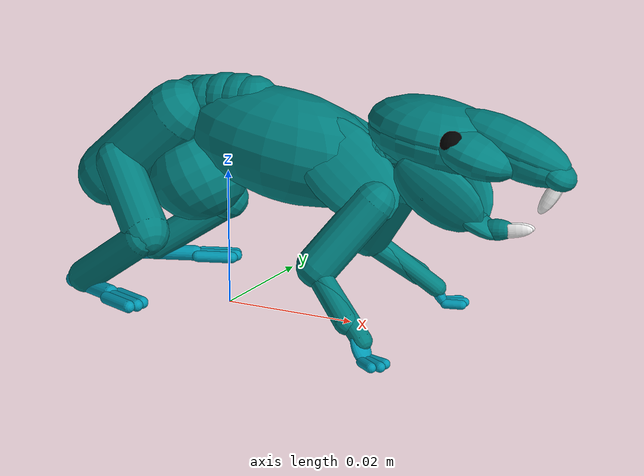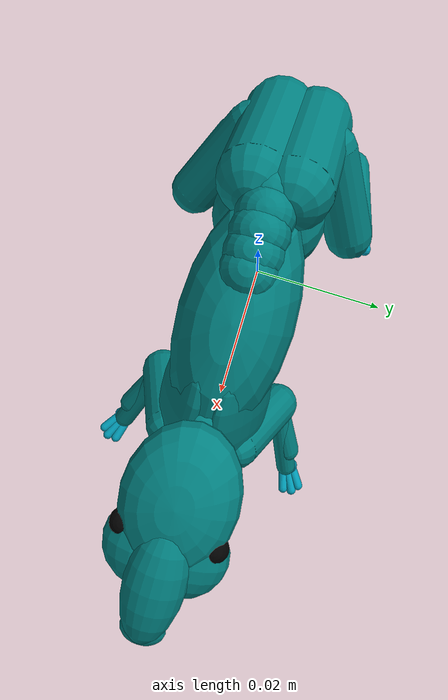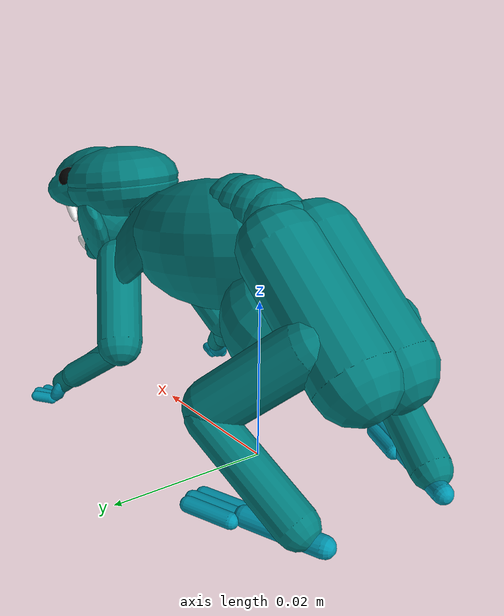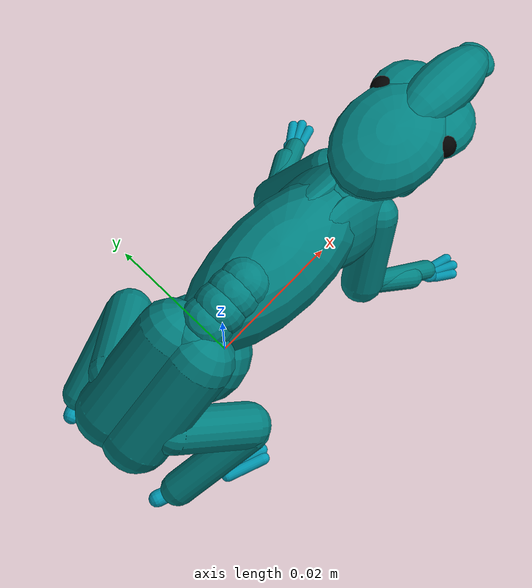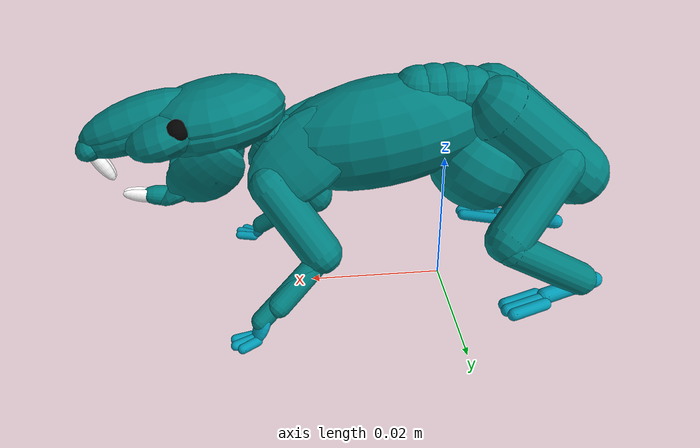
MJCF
<mujoco model="mouse_MA_anatomical03">
  <compiler angle="radian" autolimits="true"/>
  <size njmax="8000" nconmax="4000"/>
  <visual>
    <quality shadowsize="2048"/>
    <global offwidth="1152"/>
    <global offheight="1024"/>
  </visual>
  <default>
    <joint limited="true" solreflimit="0.01 1" solimplimit="0.99 0.9999 0" armature="4.75e-09" damping="0.001"/>
    <geom friction="0.7 0.005 0.0001" solref="0.005 1"/>
    <site group="3" rgba="0 0 1 1"/>
    <general ctrllimited="true" ctrlrange="-1 1" gainprm="0.01"/>
    <default class="bone">
      <geom contype="0" conaffinity="0" group="0" rgba="0.5 0.5 0.5 1" density="1100.0"/>
    </default>
    <default class="collision">
      <geom contype="1" conaffinity="1" condim="1" group="2"/>
      <default class="collision_primitive">
        <geom type="capsule" group="2" rgba="0 0.5 0.5 1" density="500.0"/>
        <default class="collision_primitive_paw">
          <geom condim="3" priority="1" rgba="0 0.6 0.7 1" friction="1.5 0.005 0.0001"/>
        </default>
        <default class="nonself_collision_primitive">
          <geom conaffinity="0"/>
        </default>
      </default>
    </default>
    <default class="lumbar">
      <joint group="3" pos="0.00114 0 -0.00114" armature="7.92e-08" damping="0.03"/>
      <general gainprm="0.15"/>
      <default class="lumbar_extend">
        <joint stiffness="0.01" range="-0.5235987755982988 0.7853981633974483"/>
        <tendon range="-1 1"/>
        <general gainprm="0.4"/>
      </default>
      <default class="lumbar_bend">
        <joint stiffness="0.03" range="-0.5235987755982988 0.5235987755982988"/>
        <tendon range="-1 1"/>
      </default>
      <default class="lumbar_twist">
        <joint stiffness="0.03" range="-0.5235987755982988 0.5235987755982988"/>
        <tendon range="-1 1"/>
      </default>
    </default>
    <default class="cervical">
      <joint group="3" pos="-0.0076 0 -0.019" stiffness="1.0" armature="7.92e-06" damping="1.0"/>
      <default class="cervical_extend">
        <joint range="-0.4072434921320102 0.6108652381980153"/>
        <tendon range="-1 1"/>
        <general gainprm="2.5"/>
      </default>
      <default class="cervical_bend">
        <joint range="-0.6108652381980153 0.6108652381980153"/>
        <tendon range="-1 1"/>
        <general gainprm="2.5"/>
      </default>
      <default class="cervical_twist">
        <joint range="-0.6108652381980153 0.6108652381980153"/>
        <tendon range="-1 1"/>
        <general gainprm="2.5"/>
      </default>
    </default>
    <default class="atlas">
      <joint axis="0 -1 0" stiffness="0.002" range="-0.08726646259971647 0.7853981633974483" damping="0.002"/>
      <general gainprm="0.025"/>
    </default>
    <default class="mandible">
      <joint stiffness="0.002" range="-0.296705972839036 0.2617993877991494" springref="-0.314159265359" damping="0.002"/>
      <general gainprm="0.025"/>
    </default>
    <default class="caudal">
      <joint group="3" stiffness="1e-05" damping="0.002"/>
      <general gainprm="0.005"/>
      <default class="caudal_extend">
        <joint range="-0.08726646259971647 0.08726646259971647"/>
        <tendon range="-0.05 0.05"/>
      </default>
      <default class="caudal_bend">
        <joint range="-0.08726646259971647 0.08726646259971647"/>
        <tendon range="-0.2 0.2"/>
      </default>
    </default>
    <default class="hip">
      <joint armature="7.92e-08" damping="0.02"/>
      <general gainprm="0.2"/>
      <default class="hip_supinate">
        <joint range="-0.6981317007977318 0.5235987755982988"/>
      </default>
      <default class="hip_abduct">
        <joint range="-0.5235987755982988 1.047197551196598"/>
      </default>
      <default class="hip_extend">
        <joint range="-1.570796326794897 1.047197551196598"/>
        <general gainprm="0.3"/>
      </default>
    </default>
    <default class="knee">
      <joint range="-1.221730476396031 1.53588974175501" damping="0.005"/>
      <general gainprm="0.2"/>
    </default>
    <default class="ankle">
      <joint range="-0.1396263401595464 1.396263401595464" damping="0.003"/>
      <general gainprm="0.2"/>
    </default>
    <default class="toe">
      <joint range="0 0.8726646259971648" damping="0.001"/>
      <general gainprm="0.025"/>
    </default>
    <default class="scapula">
      <joint damping="0.005"/>
      <general gainprm="0.25"/>
      <default class="scapula_supinate">
        <joint pos="0 0.0019 0" range="-0.0174532925199433 0.1745329251994329"/>
      </default>
      <default class="scapula_abduct">
        <joint pos="0 0.0019 -0.0038" range="-0.2617993877991494 0.2617993877991494"/>
      </default>
      <default class="scapula_extend">
        <joint pos="0 0 0" range="-0.03490658503988659 0.03490658503988659"/>
        <general gainprm="0.25"/>
      </default>
    </default>
    <default class="shoulder">
      <joint range="-1.308996938995747 0.8726646259971648" damping="0.005"/>
      <general gainprm="0.15"/>
    </default>
    <default class="shoulder_sup">
      <joint range="-0.05235987755982989 1.134464013796314" damping="0.005"/>
      <general gainprm="0.15"/>
    </default>
    <default class="elbow">
      <joint range="-1.308996938995747 0.6981317007977318" damping="0.003"/>
      <general gainprm="0.15"/>
    </default>
    <default class="wrist">
      <joint range="-0.3490658503988659 2.094395102393195" damping="0.002"/>
      <general gainprm="0.05"/>
    </default>
    <default class="finger">
      <joint range="0 1.570796326794897" damping="0.002"/>
      <general gainprm="0.025"/>
    </default>
    <default class="sensor">
      <site group="4"/>
    </default>
  </default>
  <statistic meansize="0.00114"/>
  <asset>
  </asset>
  <worldbody>
    <camera name="close_fixed" mode="fixed" pos="0.114 -0.114 0.1216" xyaxes="1 1 0 -1 1 2"/>
    <camera name="close_profile_aligned" mode="targetbody" pos="0.114 -0.114 0.095" target="torso"/>
    <body name="torso" pos="0.011778 7.8224e-08 0.024734">
      <light name="tracking_light" mode="trackcom" pos="0 0 1.14"/>
      <camera name="back" mode="trackcom" pos="-0.38 0 0.19" xyaxes="0 -1 0 1 0 2"/>
      <camera name="side" mode="trackcom" pos="0 -0.38 0.19" xyaxes="1 0 0 0 1 2"/>
      <camera name="top" mode="trackcom" fovy="100.0" pos="0 0 0.38" zaxis="0 -0.2 1"/>
      <camera name="close_profile" mode="trackcom" pos="0.114 -0.114 0.095" xyaxes="1 1 0 -1 1 2"/>
      <camera name="close_side" mode="trackcom" pos="0 -0.114 0.095" xyaxes="0 0 1 0 1 2"/>
      <camera name="examples" mode="trackcom" pos="-0.19 0 0.057" xyaxes="0 -1 0 1 0 2"/>
      <camera name="stretch_examples" mode="trackcom" pos="0.19 0 0.019" xyaxes="0 1 0 -1 0 4"/>
      <!-- REVISED - Smaller and shifted forward -->
      <geom name="collision_torso" class="nonself_collision_primitive" type="ellipsoid" size="0.016 0.0075 0.008" density="468.251260009" pos="-0.002 0 0" euler="0 0.1745329251994329 0"/>
      <body name="vertebra_1" pos="-0.007288 -7.1453e-08 0.006402">
        <geom name="vertebra_1_collision" class="nonself_collision_primitive" type="sphere" size="0.0038" pos="0 0 -0.0006232"/>
        <body name="vertebra_2" pos="-0.002139 9.8602e-07 0.0002022">
          <geom name="vertebra_2_collision" class="nonself_collision_primitive" type="sphere" size="0.0038" pos="0 0 -0.0006232"/>
          <body name="vertebra_3" pos="-0.002477 -3.956e-06 -3.5975e-05">
            <geom name="vertebra_3_collision" class="nonself_collision_primitive" type="sphere" size="0.0038" pos="0 0 -0.0006232"/>
            <body name="vertebra_4" pos="-0.002575 3.3235e-06 -0.0004937">
              <geom name="vertebra_4_collision" class="nonself_collision_primitive" type="sphere" size="0.0038" pos="0 0 -0.0006232"/>
              <body name="vertebra_5" pos="-0.002618 -2.3576e-06 -0.0009493">
                <geom name="vertebra_5_collision" class="nonself_collision_primitive" type="sphere" size="0.0038" pos="0 0 -0.0006232"/>
                <body name="vertebra_6" pos="-0.00235 -1.9967e-06 -0.001384">
                  <geom name="vertebra_6_collision" class="nonself_collision_primitive" type="sphere" size="0.0038" pos="0 0 -0.0006232"/>
                  <joint name="vertebra_6_twist" class="lumbar_twist" axis="1 0 0"/>
                  <body name="pelvis" pos="-0.004967 1.335e-06 -0.003086">
                    <geom name="collision_pelvis_L" class="nonself_collision_primitive" size="0.00494 0.00798 0" density="1548.57736929" pos="-0.0003116 0.0024928 -0.0021812" euler="0 0.8726646259971648 0"/>
                    <geom name="collision_pelvis_R" class="nonself_collision_primitive" size="0.00494 0.00798 0" density="1548.57736929" pos="-0.0003116 -0.0024928 -0.0021812" euler="0 0.8726646259971648 0"/>
                    <geom name="collision_pelvis_gut" class="nonself_collision_primitive" type="ellipsoid" size="0.0076 0.0076 0.00684" density="1548.57736929" pos="0.00779 0 -0.006232" euler="0 -0.5235987755982988 0"/>
                    <site name="hip_L" size="0.000836" pos="-0.001828 0.004367 -0.003757"/>
                    <site name="hip_R" size="0.000836" pos="-0.001828 -0.004367 -0.003757"/>
                    <body name="upper_leg_L" pos="-0.001828 0.004367 -0.003757">
                      <joint name="hip_L_supinate" class="hip_supinate" axis="-0 -0 1"/>
                      <joint name="hip_L_abduct" class="hip_abduct" axis="1 -0 -0"/>
                      <joint name="hip_L_extend" class="hip_extend" axis="0 1 0"/>
                      <site name="knee_L" type="cylinder" size="0.000228 0.00152" pos="0.005861 0.006642 -0.009768" zaxis="0 1 0"/>
                      <geom name="upper_leg_L0_collision" class="collision_primitive" size="0.003322 0.006644" density="1561.75550556" pos="0.003269 0.004086 -0.004903" euler="0.6108652381980153 -0.6981317007977318 0"/>
                      <body name="lower_leg_L" pos="0.005861 0.006642 -0.009768">
                        <joint name="knee_L" class="knee" axis="0.5 -1 0"/>
                        <site name="ankle_L" type="cylinder" size="0.000228 0.000988" pos="-0.012275 -0.001796 -0.008383" zaxis="0 1 0"/>
                        <body name="foot_L" pos="-0.012275 -0.001796 -0.008383">
                          <joint name="ankle_L" class="ankle" axis="-0.3 1 0"/>
                          <geom name="foot_L_collision" class="collision_primitive_paw" size="0.00122 0.004706" density="2041.15978228" pos="0.003144 0.0008575 -0.0008575" euler="1.570796326794897 -1.221730476396031 0"/>
                          <site name="toe_L" type="cylinder" size="0.000228 0.0019" pos="0.007982 0.002893 -0.001046" zaxis="0 1 0"/>
                          <body name="toe_L" pos="0.007982 0.002893 -0.001046">
                            <joint name="toe_L" class="toe" axis="0 1 0"/>
                            <geom name="toe_L0_collision" class="collision_primitive_paw" size="0.0009056 0.002756" pos="0.003229 -0.0003229 0" euler="1.570796326794897 -1.221730476396031 0"/>
                            <geom name="toe_L1_collision" class="collision_primitive_paw" size="0.0009056 0.002953" pos="0.003067 0.0009686 0" euler="1.570796326794897 -1.221730476396031 0"/>
                            <geom name="toe_L2_collision" class="collision_primitive_paw" size="0.0009056 0.002756" pos="0.002583 0.002099 0" euler="1.570796326794897 -1.221730476396031 0"/>
                            <site name="sole_L" class="sensor" type="box" size="0.00228 0.00152 0.00076" pos="0.003116 0.0009348 -0.0006232" euler="0 0 0.3490658503988659"/>
                          </body>
                        </body>
                        <geom name="lower_leg_L_collision" class="collision_primitive" size="0.002492 0.007309" density="1302.86687267" pos="-0.00466 -0.0000465 -0.004073" quat="0.5843939876140521 0.278581552273902 0.3900453953818352 0.6547828460754284"/>
                      </body>
                    </body>
                    <body name="upper_leg_R" pos="-0.001828 -0.004367 -0.003757">
                      <joint name="hip_R_supinate" class="hip_supinate" axis="0 0 -1"/>
                      <joint name="hip_R_abduct" class="hip_abduct" axis="-1 0 0"/>
                      <joint name="hip_R_extend" class="hip_extend" axis="0 1 0"/>
                      <site name="knee_R" type="cylinder" size="0.000228 0.00152" pos="0.005861 -0.006642 -0.009768" zaxis="0 1 0"/>
                      <geom name="upper_leg_R0_collision" class="collision_primitive" size="0.003322 0.006644" density="1561.75550556" pos="0.003269 -0.004086 -0.004903" euler="-0.6108652381980153 -0.6981317007977318 0"/>
                      <body name="lower_leg_R" pos="0.005861 -0.006642 -0.009768">
                        <joint name="knee_R" class="knee" axis="-0.5 -1 0"/>
                        <site name="ankle_R" type="cylinder" size="0.000228 0.000988" pos="-0.012275 0.001796 -0.008383" zaxis="0 1 0"/>
                        <body name="foot_R" pos="-0.012275 0.001796 -0.008383">
                          <joint name="ankle_R" class="ankle" axis="0.3 1 0"/>
                          <geom name="foot_R_collision" class="collision_primitive_paw" size="0.00122 0.004706" density="2041.15978228" pos="0.003144 -0.0008575 -0.0008575" euler="1.570796326794897 1.221730476396031 0"/>
                          <site name="toe_R" type="cylinder" size="0.000228 0.0019" pos="0.007982 -0.002893 -0.001046" zaxis="0 1 0"/>
                          <body name="toe_R" pos="0.007982 -0.002893 -0.001046">
                            <joint name="toe_R" class="toe" axis="0 1 0"/>
                            <geom name="toe_R0_collision" class="collision_primitive_paw" size="0.0009056 0.002756" pos="0.003229 0.0003229 0" euler="1.570796326794897 1.221730476396031 0"/>
                            <geom name="toe_R1_collision" class="collision_primitive_paw" size="0.0009056 0.002953" pos="0.003067 -0.0009686 0" euler="1.570796326794897 1.221730476396031 0"/>
                            <geom name="toe_R2_collision" class="collision_primitive_paw" size="0.0009056 0.002756" pos="0.002583 -0.002099 0" euler="1.570796326794897 1.221730476396031 0"/>
                            <site name="sole_R" class="sensor" type="box" size="0.00228 0.00152 0.00076" pos="0.003116 -0.0009348 -0.0006232" euler="0 0 -0.3490658503988659"/>
                          </body>
                        </body>
                        <geom name="lower_leg_R_collision" class="collision_primitive" size="0.002492 0.007309" density="1302.86687267" pos="-0.004571 -0.0000614 -0.004018" quat="0.6564315036111004 0.3901417719765998 0.2779576926818845 0.5827749135856758"/>
                      </body>
                    </body>
                    <body name="vertebra_C1" pos="-0.005990 0 -0.004515">
                      <body name="vertebra_C2" pos="-0.001473 0 -0.001606">
                        <body name="vertebra_C3" pos="-0.001301 0 -0.001620">
                          <body name="vertebra_C4" pos="-0.001243 0 -0.001678">
                            <body name="vertebra_C5" pos="-0.001207 0 -0.001736">
                              <body name="vertebra_C6" pos="-0.001185 0 -0.001862">
                                <body name="vertebra_C7" pos="-0.001222 0 -0.002145">
                                  <body name="vertebra_C8" pos="-0.001309 0 -0.002097">
                                    <body name="vertebra_C9" pos="-0.001628 0 -0.001944">
                                      <body name="vertebra_C10" pos="-0.001847 0 -0.001734">
                                        <body name="vertebra_C11" pos="-0.002042 0 -0.001658">
                                          <body name="vertebra_C12" pos="-0.002331 0 -0.001460">
                                            <body name="vertebra_C13" pos="-0.002621 0 -0.0009851">
                                              <body name="vertebra_C14" pos="-0.002594 0 -0.0003454">
                                                <body name="vertebra_C15" pos="-0.002480 0 -0.0001198">
                                                  <body name="vertebra_C16" pos="-0.002544 0 -0.0000526">
                                                    <body name="vertebra_C17" pos="-0.002464 0 -0.00000635">
                                                      <body name="vertebra_C18" pos="-0.002359 0 6.937e-11">
                                                        <body name="vertebra_C19" pos="-0.002358 0 -3.1167e-10">
                                                          <body name="vertebra_C20" pos="-0.002367 0 9.5628e-07">
                                                            <body name="vertebra_C21" pos="-0.002325 0 -0.00004167">
                                                            <body name="vertebra_C22" pos="-0.002473 0 -0.000004985">
                                                            <body name="vertebra_C23" pos="-0.002428 0 6.6553e-10">
                                                            <body name="vertebra_C24" pos="-0.002349 0 -4.7391e-10">
                                                            <body name="vertebra_C25" pos="-0.002268 0 5.242e-11">
                                                            <body name="vertebra_C26" pos="-0.002139 0 -5.1894e-10">
                                                            <body name="vertebra_C27" pos="-0.001973 0 5.3036e-10">
                                                            <body name="vertebra_C28" pos="-0.001914 0 1.9281e-07">
                                                            <body name="vertebra_C29" pos="-0.001814 0 -2.3581e-11">
                                                            <body name="vertebra_C30" pos="-0.001522 0 -1.5949e-07">
                                                            <geom name="vertebra_C30_collision" class="collision_primitive" size="0.0004932 0.002342 0.001313" density="507.157357703" pos="-1.2973e-17 0 0" quat="0 0.7071067811865475 0 0.7071067811865476" rgba="0 0 0 0"/>
                                                            </body>
                                                            <joint name="vertebra_C29_bend" class="caudal_bend" pos="0.001421 0 1.8478e-11" axis="1.299892892972596e-08 0 -0.9999999999999999" range="-0.2617993877991494 0.2617993877991494"/>
                                                            <geom name="vertebra_C29_collision" class="collision_primitive" size="0.0004928 0.002266 0.0009951" density="507.157357703" pos="8.6486e-18 0 0" quat="0 0.7071067811865475 0 0.7071067811865476" rgba="0 0 0 0"/>
                                                            </body>
                                                            <geom name="vertebra_C28_collision" class="collision_primitive" size="0.0004928 0.002191 0.001093" density="507.157357703" pos="-8.6486e-18 0 0" quat="0 0.7071067811865475 0 0.7071067811865476" rgba="0 0 0 0"/>
                                                            </body>
                                                            <joint name="vertebra_C27_extend" class="caudal_extend" pos="0.001464 0 -3.9358e-10" axis="0 0.9999999999999999 0" range="-0.2617993877991494 0.2617993877991494"/>
                                                            <geom name="vertebra_C27_collision" class="collision_primitive" size="0.0005242 0.002115 0.001163" density="507.157357703" pos="-8.6486e-18 -2.1622e-18 0" quat="0 0.7071067811865475 0 0.7071067811865476" rgba="0 0 0 0"/>
                                                            </body>
                                                            <geom name="vertebra_C26_collision" class="collision_primitive" size="0.0005242 0.00204 0.001163" density="507.157357703" pos="0 0 0" quat="0 0.7071067811865475 0 0.7071067811865476" rgba="0 0 0 0"/>
                                                            </body>
                                                            <joint name="vertebra_C25_bend" class="caudal_bend" pos="0.001367 0 -3.1587e-11" axis="-2.311404765380703e-08 0 -0.9999999999999998" range="-0.2617993877991494 0.2617993877991494"/>
                                                            <geom name="vertebra_C25_collision" class="collision_primitive" size="0.0005242 0.001964 0.001322" density="507.157357703" pos="8.6486e-18 2.1622e-18 0" quat="0 0.7071067811865475 0 0.7071067811865476" rgba="0 0 0 0"/>
                                                            </body>
                                                            <geom name="vertebra_C24_collision" class="collision_primitive" size="0.0005242 0.001888 0.001322" density="507.157357703" pos="0 2.1622e-18 0" quat="0 0.7071067811865475 0 0.7071067811865476" rgba="0 0 0 0"/>
                                                            </body>
                                                            <joint name="vertebra_C23_extend" class="caudal_extend" pos="0.001367 0 -3.7451e-10" axis="0 1 0" range="-0.2617993877991494 0.2617993877991494"/>
                                                            <geom name="vertebra_C23_collision" class="collision_primitive" size="0.0005242 0.001813 0.001421" density="507.157357703" pos="0 0 0" quat="0 0.7071067811865475 0 0.7071067811865476" rgba="0 0 0 0"/>
                                                            </body>
                                                            <geom name="vertebra_C22_collision" class="collision_primitive" size="0.0005242 0.001737 0.001421" density="507.157357703" pos="8.6486e-18 0 0" quat="0 0.7071067811865475 0 0.7071067811865476" rgba="0 0 0 0"/>
                                                            </body>
                                                            <joint name="vertebra_C21_bend" class="caudal_bend" pos="0.001468 0 0.00002631" axis="0.01792297618959377 0 -0.9998393705613454" range="-0.2617993877991494 0.2617993877991494"/>
                                                            <geom name="vertebra_C21_collision" class="collision_primitive" size="0.0005816 0.001889 0.001464" density="507.157357703" pos="-8.6486e-18 0 0" quat="0 0.7071067811865475 0 0.7071067811865476" rgba="0 0 0 0"/>
                                                            </body>
                                                            <geom name="vertebra_C20_collision" class="collision_primitive" size="0.0005693 0.001967 0.001367" density="507.157357703" pos="0 1.0811e-18 0" quat="0 0.7071067811865475 0 0.7071067811865476" rgba="0 0 0 0"/>
                                                          </body>
                                                          <joint name="vertebra_C19_extend" class="caudal_extend" pos="0.001626 0 2.1493e-10" axis="-0 1 0" range="-0.2617993877991494 0.2617993877991494"/>
                                                          <geom name="vertebra_C19_collision" class="collision_primitive" size="0.0006209 0.001965 0.001367" density="507.157357703" pos="0 0 0" quat="0 0.7071067811865475 0 0.7071067811865476" rgba="0 0 0 0"/>
                                                        </body>
                                                        <geom name="vertebra_C18_collision" class="collision_primitive" size="0.0006209 0.001867 0.001367" density="507.157357703" pos="-1.7297e-17 1.3513e-19 0" quat="0 0.7071067811865475 0 0.7071067811865476" rgba="0 0 0 0"/>
                                                      </body>
                                                      <joint name="vertebra_C17_bend" class="caudal_bend" pos="0.001626 0 0.000004189" axis="0.002575715973669538 0 -0.9999966828381097" range="-0.2617993877991494 0.2617993877991494"/>
                                                      <geom name="vertebra_C17_collision" class="collision_primitive" size="0.0006209 0.001769 0.001367" density="507.157357703" pos="1.7297e-17 1.3513e-19 0" quat="0 0.7071067811865475 0 0.7071067811865476" rgba="0 0 0 0"/>
                                                    </body>
                                                    <geom name="vertebra_C16_collision" class="collision_primitive" size="0.0007137 0.00167 0.001469" density="507.157357703" pos="1.7297e-17 0 0" quat="0 0.7071067811865475 0 0.7071067811865476" rgba="0 0 0 0"/>
                                                  </body>
                                                  <joint name="vertebra_C15_extend" class="caudal_extend" pos="0.001494 0 0.00007221" axis="-0 0.9999999999999999 0" range="-0.2617993877991494 0.2617993877991494"/>
                                                  <geom name="vertebra_C15_collision" class="collision_primitive" size="0.0007012 0.001572 0.001468" density="507.157357703" pos="0 -1.0811e-18 0" quat="-3.048411496515643e-15 0.6991848455046811 3.117107305228081e-15 0.7149409428873096" rgba="0 0 0 0"/>
                                                </body>
                                                <geom name="vertebra_C14_collision" class="collision_primitive" size="0.0007011 0.001474 0.001468" density="507.157357703" pos="-1.7297e-17 -1.6216e-18 0" quat="0 0.6866112770928985 0 0.7270247273434782" rgba="0 0 0 0"/>
                                              </body>
                                              <joint name="vertebra_C13_bend" class="caudal_bend" pos="0.001335 0 0.0005016" axis="0.3518244833508478 0 -0.9360659874789323" range="-0.2617993877991494 0.2617993877991494"/>
                                              <geom name="vertebra_C13_collision" class="collision_primitive" size="0.0007945 0.001505 0.001626" density="507.157357703" pos="-4.3243e-18 0 6.7567e-20" quat="1.892164903646171e-16 0.6293932092262298 -2.336181429597261e-16 0.7770869888113604" rgba="0 0 0 0"/>
                                            </body>
                                            <geom name="vertebra_C12_collision" class="collision_primitive" size="0.0009247 0.001576 0.001626" density="507.157357703" pos="0 0 0" quat="1.235560731911126e-17 0.5080793265726891 -7.288463628123299e-18 0.8613102796956755" rgba="0 0 0 0"/>
                                          </body>
                                          <joint name="vertebra_C11_extend" class="caudal_extend" pos="0.00104 0 0.0008445" axis="-0 0.9999999999999998 0" range="-0.2617993877991494 0.2617993877991494"/>
                                          <geom name="vertebra_C11_collision" class="collision_primitive" size="0.0009499 0.001481 0.001626" density="507.157357703" pos="-8.6486e-18 0 0" quat="8.0408085539503e-17 0.4349444185915732 -3.883920751947562e-17 0.9004573020060631" rgba="0 0 0 0"/>
                                        </body>
                                        <geom name="vertebra_C10_collision" class="collision_primitive" size="0.0013 0.001975 0.001496" density="507.157357703" pos="0 0 -5.4054e-19" quat="6.606927199194023e-17 0.404822478038031 -2.925028864881283e-17 0.914395298147988" rgba="0 0 0 0"/>
                                      </body>
                                      <joint name="vertebra_C9_bend" class="caudal_bend" pos="0.001097 0 0.001309" axis="0.7665487416508834 0 -0.6421861308635113" range="-0.2617993877991494 0.2617993877991494"/>
                                      <geom name="vertebra_C9_collision" class="collision_primitive" size="0.00119 0.001708 0.001496" density="507.157357703" pos="0 0 -1.0811e-18" quat="0.9339363308955284 -2.188685129702187e-17 0.3574394072194587 5.718710691193161e-17" rgba="0 0 0 0"/>
                                    </body>
                                    <geom name="vertebra_C8_collision" class="collision_primitive" size="0.001146 0.001504 0.001496" density="507.157357703" pos="0 0 -1.0811e-18" quat="0.9557562961254608 -1.801208397451436e-17 0.2941596546376485 5.852319444074877e-17" rgba="0 0 0 0"/>
                                  </body>
                                  <joint name="vertebra_C7_extend" class="caudal_extend" pos="0.001022 0 0.001794" axis="-0 0.9999999999999998 0" range="-0.2617993877991494 0.2617993877991494"/>
                                  <geom name="vertebra_C7_collision" class="collision_primitive" size="0.001238 0.001763 0.001426" density="507.157357703" pos="0 0 0" quat="-0.9587181623873691 -0.02864387142163538 -0.2629262253293439 0.1044452668751926" rgba="0 0 0 0"/>
                                </body>
                                <joint name="vertebra_C6_extend" class="caudal_extend" pos="0.0007993 0 0.001256" axis="-0 0.9999999999999998 0" range="-0.2617993877991494 0.2617993877991494"/>
                                <joint name="vertebra_C6_bend" class="caudal_bend" pos="0.0007993 0 0.001256" axis="0.8436498258045544 0 -0.5368938176398985" range="-0.2617993877991494 0.2617993877991494"/>
                                <geom name="vertebra_C6_collision" class="collision_primitive" size="0.001463 0.001688 0.001489" density="507.157357703" pos="0 0 -2.1622e-18" quat="-0.9684724633255426 -0.0201653665451908 -0.2338356379719502 0.08351850206094803" rgba="0 0 0 0"/>
                              </body>
                              <joint name="vertebra_C5_extend" class="caudal_extend" pos="0.0007647 0 0.0011" axis="-0 0.9999999999999998 0" range="-0.2617993877991494 0.2617993877991494"/>
                              <joint name="vertebra_C5_bend" class="caudal_bend" pos="0.0007647 0 0.0011" axis="0.8211323953906199 0 -0.5707377587299287" range="-0.2617993877991494 0.2617993877991494"/>
                              <geom name="vertebra_C5_collision" class="collision_primitive" size="0.001727 0.001435 0.00134" density="507.157357703" pos="0 0 0" quat="0.959555122982002 -1.723817788817547e-17 0.2815208091047534 5.875580549826768e-17" rgba="0 0 0 0"/>
                            </body>
                            <joint name="vertebra_C4_extend" class="caudal_extend" pos="0.0009637 0 0.001301" axis="-0 0.9999999999999996 0" range="-0.2617993877991494 0.2617993877991494"/>
                            <joint name="vertebra_C4_bend" class="caudal_bend" pos="0.0009637 0 0.001301" axis="0.8035447758282259 0 -0.595244313907462" range="-0.2617993877991494 0.2617993877991494"/>
                            <geom name="vertebra_C4_collision" class="collision_primitive" size="0.002528 0.001464 0.001619" density="507.157357703" pos="0 0 -2.1622e-18" quat="0.6698964656770412 0.2263597253784533 0.2263597253784533 0.6698964656770412" rgba="0 0 0 0"/>
                          </body>
                          <joint name="vertebra_C3_extend" class="caudal_extend" pos="0.00107 0 0.001332" axis="-0 0.9999999999999998 0" range="-0.2617993877991494 0.2617993877991494"/>
                          <joint name="vertebra_C3_bend" class="caudal_bend" pos="0.00107 0 0.001332" axis="0.7796571863505312 0 -0.6262065727633115" range="-0.2617993877991494 0.2617993877991494"/>
                          <geom name="vertebra_C3_collision" class="collision_primitive" size="0.002991 0.001557 0.001708" density="507.157357703" pos="0 0 2.1622e-18" quat="0.658413368499565 0.2578601097127201 0.2578601097127201 0.658413368499565" rgba="0 0 0 0"/>
                        </body>
                        <joint name="vertebra_C2_extend" class="caudal_extend" pos="0.001352 0 0.001474" axis="-0 1 0" range="-0.2617993877991494 0.2617993877991494"/>
                        <joint name="vertebra_C2_bend" class="caudal_bend" pos="0.001352 0 0.001474" axis="0.7369087259505994 0 -0.6759922555901543" range="-0.2617993877991494 0.2617993877991494"/>
                        <geom name="vertebra_C2_collision" class="collision_primitive" size="0.003177 0.001332 0.002" density="507.157357703" pos="0 0 0" quat="0.6165945006583455 0.3461375763448482 0.3461375763448482 0.6165945006583455" rgba="0 0 0 0"/>
                      </body>
                      <joint name="vertebra_C1_extend" class="caudal_extend" pos="0.00165 0 0.001242" axis="0 1 0" range="-0.2617993877991494 0.2617993877991494"/>
                      <joint name="vertebra_C1_bend" class="caudal_bend" pos="0.00165 0 0.001242" axis="0.6012684687925202 0 -0.7990470752314273" range="-0.2617993877991494 0.2617993877991494"/>
                      <geom name="vertebra_C1_collision" class="collision_primitive" size="0.004167 0.000891 0.002065" density="507.157357703" pos="0 -1.0557e-21 0" quat="0.5772408551843025 0.3506607415056362 0.3240276763775721 0.662447057819841" rgba="0 0 0 0"/>
                    </body>
                  </body>
                </body>
                <joint name="vertebra_5_bend" class="lumbar_bend" axis="0 0 1"/>
              </body>
              <joint name="vertebra_4_extend" class="lumbar_extend" axis="0 1 0"/>
            </body>
            <joint name="vertebra_3_twist" class="lumbar_twist" axis="1 0 0"/>
          </body>
          <joint name="vertebra_2_bend" class="lumbar_bend" axis="0 0 1"/>
        </body>
        <joint name="vertebra_1_extend" class="lumbar_extend" axis="0 1 0"/>
      </body>
      <body name="vertebra_cervical_5" pos="0.01053 4.494e-06 -0.0003801">
        <geom name="vertebra_cervical_5_collision" class="nonself_collision_primitive" type="sphere" size="0.00342" density="300.0"/>
        <body name="vertebra_cervical_4" pos="0.0009154 -4.5657e-06 0.0003076">
          <geom name="vertebra_cervical_4_collision" class="nonself_collision_primitive" type="sphere" size="0.003192" density="300.0"/>
          <body name="vertebra_cervical_3" pos="0.0008171 4.591e-11 0.0003578">
            <geom name="vertebra_cervical_3_collision" class="nonself_collision_primitive" type="sphere" size="0.002964" density="300.0"/>
            <body name="vertebra_cervical_2" pos="0.000722 4.879e-11 0.0003324">
              <geom name="vertebra_cervical_2_collision" class="nonself_collision_primitive" type="sphere" size="0.002736" density="300.0"/>
              <body name="vertebra_cervical_1" pos="0.0006755 1.7184e-10 0.0003553">
                <geom name="vertebra_cervical_1_collision" class="nonself_collision_primitive" type="sphere" size="0.002508" density="300.0"/>
                <body name="vertebra_axis" pos="0.0007153 -6.6753e-07 0.0006482">
                  <geom name="vertebra_axis_collision" class="nonself_collision_primitive" type="sphere" size="0.00228" density="300.0"/>
                  <body name="vertebra_atlant" pos="0.0009318 6.6765e-07 0.0005204">
                    <geom name="vertebra_atlant_collision" class="nonself_collision_primitive" type="sphere" size="0.002052" density="300.0"/>
                    <joint name="vertebra_atlant_extend" class="cervical_extend" pos="0.00001041 -1.883e-08 -0.00008038" axis="0 1 0"/>
                    <body name="skull" pos="0.009344 1.5128e-09 0.0006374">
                      <geom name="skull_0_collision" class="collision_primitive" type="ellipsoid" size="0.009722 0.007346 0.0044" density="703.10773841" pos="-0.003986 0 0.0003608" euler="0 0.1745329251994329 0"/>
                      <geom name="skull_0b_collision" class="collision_primitive" type="ellipsoid" size="0.009722 0.007346 0.0044" density="1.40621547682" pos="-0.003986 0 0.001443" euler="0 0.1745329251994329 0"/>
                      <geom name="skull_F_collision" class="collision_primitive" type="ellipsoid" size="0.00316 0.003918 0.0088" density="703.10773841" pos="0.006378 0 -0.0003608" euler="0 1.919862177193763 0"/>
                      <geom name="skull_Fb_collision" class="collision_primitive" type="ellipsoid" size="0.00316 0.003918 0.0088" density="1.40621547682" pos="0.006378 0 0.0007216" euler="0 1.919862177193763 0"/>
                      <geom name="skull_L_collision" class="collision_primitive" type="ellipsoid" size="0.00316 0.005877 0.00616" density="703.10773841" pos="0.002392 0.002008 -0.0003608" euler="0 1.919862177193763 0"/>
                      <geom name="eye_L_collision" class="collision_primitive" type="sphere" group="1" size="0.00176 0.00176 0.00176" rgba="0 0 0 1" pos="0.0004861 0.005632 0.0011"/>
                      <geom name="skull_R_collision" class="collision_primitive" type="ellipsoid" size="0.00316 0.005877 0.00616" density="703.10773841" pos="0.002392 -0.002008 -0.0003608" euler="0 1.919862177193763 0"/>
                      <geom name="eye_R_collision" class="collision_primitive" type="sphere" group="1" size="0.00176 0.00176 0.00176" rgba="0 0 0 1" pos="0.0004861 -0.005632 0.0011"/>
                      <geom name="skull_P0_collision" class="collision_primitive" type="box" size="0.002917 0.002743 0.000704" density="703.10773841" pos="0.0007972 0 -0.002526"/>
                      <geom name="skull_P1_collision" class="collision_primitive" type="box" size="0.001944 0.001763 0.000528" density="703.10773841" pos="0.00279 0 -0.002526"/>
                      <geom name="skull_P2_collision" class="collision_primitive" type="box" size="0.0004861 0.001469 0.000352" density="703.10773841" pos="0.003787 0 -0.002526"/>
                      <geom name="skull_T0_collision" class="collision_primitive" type="ellipsoid" size="0.002431 0.002938 0.00176" density="703.10773841" pos="0.01315 0 -0.002886" euler="0 0.5235987755982988 0"/>
                      <geom name="skull_T1_collision" class="collision_primitive" type="ellipsoid" group="1" size="0.0009722 0.0007346 0.00308" rgba="1 1 1 1" density="703.10773841" pos="0.01236 0.0004016 -0.005412" euler="0 0.5235987755982988 0"/>
                      <geom name="skull_T2_collision" class="collision_primitive" type="ellipsoid" group="1" size="0.0009722 0.0007346 0.00308" rgba="1 1 1 1" density="703.10773841" pos="0.01236 -0.0004016 -0.005412" euler="0 0.5235987755982988 0"/>
                      <joint name="atlas" class="atlas" pos="-0.01251 0 0"/>
                      <site name="head" class="sensor" type="box" size="0.00088 0.00088 0.00088"/>
                      <camera name="egocentric" fovy="80.0" pos="0.0044 0 0.0022" euler="0 -1.570796326794897 -1.570796326794897"/>
                      <body name="jaw" pos="0.0001993 -6.9907e-09 -0.007216" euler="0 0.2617993877991494 0">
                        <geom name="jaw_back_collision" class="collision_primitive" type="ellipsoid" size="0.005347 0.005877 0.00308" density="314.057274977" pos="-0.004783 0 0.000902" euler="0 0.9599310885968813 0"/>
                        <geom name="jaw_F_collision" class="collision_primitive" type="ellipsoid" size="0.001458 0.002938 0.00528" density="314.057274977" pos="0.001196 0 -0.002165" euler="0 1.832595714594046 0"/>
                        <geom name="jaw_L_collision" class="collision_primitive" type="ellipsoid" size="0.004375 0.001714 0.00704" density="314.057274977" pos="-0.002392 0.003614 0.0003608" euler="-0.6981317007977318 2.181661564992912 0.5235987755982988"/>
                        <geom name="jaw_R_collision" class="collision_primitive" type="ellipsoid" size="0.004375 0.001714 0.00704" density="314.057274977" pos="-0.002392 -0.003614 0.0003608" euler="0.6981317007977318 2.181661564992912 -0.5235987755982988"/>
                        <geom name="jaw_T0_collision" class="collision_primitive" type="ellipsoid" size="0.001458 0.001469 0.00264" density="314.057274977" pos="0.00558 0 -0.002526" euler="0 1.221730476396031 0"/>
                        <geom name="jaw_T1_collision" class="collision_primitive" type="ellipsoid" group="1" size="0.0009722 0.0005877 0.00308" rgba="1 1 1 1" density="314.057274977" pos="0.007573 0.0004016 -0.001804" euler="0 1.134464013796314 0"/>
                        <geom name="jaw_T2_collision" class="collision_primitive" type="ellipsoid" group="1" size="0.0009722 0.0005877 0.00308" rgba="1 1 1 1" density="314.057274977" pos="0.007573 -0.0004016 -0.001804" euler="0 1.134464013796314 0"/>
                        <geom name="jaw_P0_collision" class="collision_primitive" type="box" size="0.002917 0.002743 0.000704" density="314.057274977" pos="-0.001196 0 0.0003608" euler="0 0.9599310885968813 0"/>
                        <geom name="jaw_P1_collision" class="collision_primitive" type="box" size="0.001944 0.002155 0.00044" density="314.057274977" pos="0 0 -0.000433" euler="0 0.5235987755982988 0"/>
                        <geom name="jaw_P2_collision" class="collision_primitive" type="box" size="0.001944 0.001763 0.00044" density="314.057274977" pos="0.001196 0 -0.00101" euler="0 0.4363323129985824 0"/>
                        <geom name="jaw_P3_collision" class="collision_primitive" type="box" size="0.001458 0.001273 0.000264" density="314.057274977" pos="0.002073 0 -0.001263" euler="0 0.2617993877991494 0"/>
                        <joint name="mandible" class="mandible" pos="-0.00814 0 0.00176" axis="0 1 0"/>
                      </body>
                    </body>
                  </body>
                  <joint name="vertebra_axis_twist" class="cervical_twist" pos="0.00003779 2.7863e-08 -0.0001017" axis="0.7409845944832573 -0.0006915153935393208 0.6715216694529994"/>
                </body>
                <joint name="vertebra_cervical_1_bend" class="cervical_bend" pos="0.00001044 -8.4268e-12 -0.0001002" axis="-0.4655674978646318 0 0.885012375581277"/>
              </body>
              <joint name="vertebra_cervical_2_extend" class="cervical_extend" pos="0.000004922 -2.2022e-12 -0.00009647" axis="0 1 0"/>
            </body>
            <joint name="vertebra_cervical_3_twist" class="cervical_twist" pos="0.000003115 -1.849e-12 -0.00009668" axis="0.9160353567291684 5.146827584715309e-08 0.4010975258239107"/>
          </body>
          <joint name="vertebra_cervical_4_bend" class="cervical_bend" pos="-0.000005843 1.8229e-07 -0.0001037" axis="-0.3185475796000196 0 0.9478950836057671"/>
        </body>
        <joint name="vertebra_cervical_5_extend" class="cervical_extend" pos="-0.00007351 -1.5195e-07 -0.00008728" axis="0 1 0"/>
      </body>
      <body name="scapula_L" pos="0.002493 0.0006232 0.004362">
        <joint name="scapula_L_supinate" class="scapula_supinate" pos="0 -0.0019 0" axis="-0 -0 1"/>
        <joint name="scapula_L_abduct" class="scapula_abduct" pos="0 -0.0019 -0.0038" axis="1 -0 -0"/>
        <joint name="scapula_L_extend" class="scapula_extend" pos="0 0 0" axis="0.3 1 0"/>
        <site name="shoulder_L" size="0.00076" pos="0.010906 0.003739 -0.00966"/>
        <body name="upper_arm_L" pos="0.010906 0.003739 -0.00966">
          <joint name="shoulder_L" class="shoulder" axis="0 1 0"/>
          <joint name="shoulder_sup_L" class="shoulder_sup" axis="0 0 -1"/>
          <site name="elbow_L" type="cylinder" size="0.000228 0.00152" pos="-0.006054 0.003935 -0.008475" zaxis="0 1 0.2"/>
          <body name="lower_arm_L" pos="-0.006054 0.003935 -0.008475">
            <joint name="elbow_L" class="elbow" axis="0 1 0.2"/>
            <site name="wrist_L" type="cylinder" size="0.000304 0.001292" pos="0.008209 0.004789 -0.007525" zaxis="0 1 0"/>
            <body name="hand_L" pos="0.008209 0.004789 -0.007525">
              <joint name="wrist_L" class="wrist" axis="0.6 -1 0"/>
              <geom name="hand_L_collision" class="collision_primitive_paw" type="ellipsoid" size="0.002459 0.001405 0.000843" density="2531.78122831" pos="0.000576 0.000288 -0.001728" euler="-0.6981317007977318 0.8726646259971648 0.7853981633974483"/>
              <site name="finger_L" type="cylinder" size="0.000228 0.0019" pos="0.001152 0.000576 -0.003168" zaxis="-0.2 1 0"/>
              <body name="finger_L" pos="0.001152 0.000576 -0.003168">
                <joint name="finger_L" class="finger" axis="-0.5 1 0"/>
                <geom name="finger_L0_collision" class="collision_primitive_paw" size="0.0007025 0.001229" pos="0.001872 -0.000288 0" euler="1.570796326794897 -1.308996938995747 0"/>
                <geom name="finger_L1_collision" class="collision_primitive_paw" size="0.0007025 0.001405" pos="0.001728 0.000720 -0.000000" euler="1.570796326794897 -1.099557428756428 0"/>
                <geom name="finger_L2_collision" class="collision_primitive_paw" size="0.0007025 0.001229" pos="0.001008 0.00144 -0.000000" euler="1.570796326794897 -0.9599310885968813 0"/>
                <site name="palm_L" class="sensor" type="box" size="0.00152 0.00152 0.00076" pos="0.00187 0.000935 -0.000623" euler="0 0 0.4886921905584123"/>
              </body>
            </body>
            <geom name="radius_L_collision" class="collision_primitive" size="0.001418 0.006048" pos="0.004372 0.002603 -0.004646" quat="0.02376493230846292 0.7917721441518218 0.4232293467931716 0.4397829234413568"/>
            <geom name="ulna_L_collision" class="collision_primitive" size="0.001668 0.005005" pos="0.002565 0.001897 -0.003606" quat="0.01282244452041863 0.7446249872782607 0.4776065607195328 0.4661128472752391"/>
          </body>
          <geom name="humerus_L_collision" class="collision_primitive" size="0.002953 0.005906" pos="-0.002942 0.002199 -0.004554" quat="0.472560999180163 0.3450082805420177 0.0007016050154913519 0.8109592444517103"/>
        </body>
        <geom name="scapula_L_collision" class="nonself_collision_primitive" type="ellipsoid" size="0.001902 0.00556 0.009238" density="513.564612303" pos="0.006677 0.003282 -0.005787" quat="0.1844194062696375 0.7692222855376651 0.4740322845517004 0.3867556738123709"/>
      </body>
      <body name="scapula_R" pos="0.002493 -0.0006232 0.004362">
        <joint name="scapula_R_supinate" class="scapula_supinate" pos="0 0.0019 0" axis="0 0 -1"/>
        <joint name="scapula_R_abduct" class="scapula_abduct" pos="0 0.0019 -0.0038" axis="-1 0 0"/>
        <joint name="scapula_R_extend" class="scapula_extend" pos="0 0 0" axis="-0.3 1 0"/>
        <site name="shoulder_R" size="0.00076" pos="0.010906 -0.003739 -0.00966"/>
        <body name="upper_arm_R" pos="0.010906 -0.003739 -0.00966">
          <joint name="shoulder_R" class="shoulder" axis="0 1 0"/>
          <joint name="shoulder_sup_R" class="shoulder_sup" axis="-0 -0 1"/>
          <site name="elbow_R" type="cylinder" size="0.000228 0.00152" pos="-0.006054 -0.003935 -0.008475" zaxis="0 1 -0.2"/>
          <body name="lower_arm_R" pos="-0.006054 -0.003935 -0.008475">
            <joint name="elbow_R" class="elbow" axis="0 1 -0.2"/>
            <site name="wrist_R" type="cylinder" size="0.000304 0.001292" pos="0.008209 -0.004789 -0.007525" zaxis="0 1 0"/>
            <body name="hand_R" pos="0.008209 -0.004789 -0.007525">
              <joint name="wrist_R" class="wrist" axis="-0.6 -1 0"/>
              <geom name="hand_R_collision" class="collision_primitive_paw" type="ellipsoid" size="0.002459 0.001405 0.000843" density="2531.78122831" pos="0.000576 -0.000288 -0.001728" euler="0.6981317007977318 0.8726646259971648 -0.7853981633974483"/>
              <site name="finger_R" type="cylinder" size="0.000228 0.0019" pos="0.001152 -0.000576 -0.003168" zaxis="0.2 1 0"/>
              <body name="finger_R" pos="0.001152 -0.000576 -0.003168">
                <joint name="finger_R" class="finger" axis="0.5 1 0"/>
                <geom name="finger_R0_collision" class="collision_primitive_paw" size="0.0007025 0.001229" pos="0.001872 0.000288 0" euler="1.570796326794897 1.308996938995747 0"/>
                <geom name="finger_R1_collision" class="collision_primitive_paw" size="0.0007025 0.001405" pos="0.001728 -0.000720 0" euler="1.570796326794897 1.099557428756428 0"/>
                <geom name="finger_R2_collision" class="collision_primitive_paw" size="0.0007025 0.001229" pos="0.001008 -0.00144 0" euler="1.570796326794897 0.9599310885968813 0"/>
                <site name="palm_R" class="sensor" type="box" size="0.00152 0.00152 0.00076" pos="0.00187 -0.000935 -0.000623" euler="0 0 -0.4886921905584123"/>
              </body>
            </body>
            <geom name="radius_R_collision" class="collision_primitive" size="0.001418 0.006048" pos="0.004372 -0.002603 -0.004646" quat="0.4397828585901176 0.423230473256099 0.7917715587074765 0.02376557635859348"/>
            <geom name="ulna_R_collision" class="collision_primitive" size="0.001668 0.005005" pos="0.002565 -0.001897 -0.003606" quat="0.4661127828257156 0.4776067795325061 0.7446248854693838 0.01282254930824632"/>
          </body>
          <geom name="humerus_R_collision" class="collision_primitive" size="0.002953 0.005906" pos="-0.002942 -0.0022 -0.004554" quat="0.8109593935310486 0.0007013948082913995 0.3450082795040448 0.4725607444157158"/>
        </body>
        <geom name="scapula_R_collision" class="nonself_collision_primitive" type="ellipsoid" size="0.001902 0.00556 0.009238" density="513.564646393" pos="0.006677 -0.003282 -0.005787" quat="0.3867556972129688 0.4740321312040688 0.7692223496423682 0.1844194839763772"/>
      </body>
    </body>
  </worldbody>
  <contact>
    <exclude name="pelvis:vertebra_C2" body1="pelvis" body2="vertebra_C2"/>
    <exclude name="pelvis:vertebra_C3" body1="pelvis" body2="vertebra_C3"/>
    <exclude name="pelvis:vertebra_C4" body1="pelvis" body2="vertebra_C4"/>
    <exclude name="vertebra_C1:vertebra_C3" body1="vertebra_C1" body2="vertebra_C3"/>
    <exclude name="vertebra_C1:vertebra_C4" body1="vertebra_C1" body2="vertebra_C4"/>
    <exclude name="vertebra_C2:vertebra_C4" body1="vertebra_C2" body2="vertebra_C4"/>
    <exclude name="vertebra_C3:vertebra_C5" body1="vertebra_C3" body2="vertebra_C5"/>
    <exclude name="vertebra_C4:vertebra_C6" body1="vertebra_C4" body2="vertebra_C6"/>
    <exclude name="vertebra_C5:vertebra_C7" body1="vertebra_C5" body2="vertebra_C7"/>
    <exclude name="vertebra_axis:skull" body1="vertebra_axis" body2="skull"/>
    <exclude name="pelvis:vertebra_C5" body1="pelvis" body2="vertebra_C5"/>
    <exclude name="pelvis:vertebra_C6" body1="pelvis" body2="vertebra_C6"/>
    <exclude name="vertebra_C2:vertebra_C5" body1="vertebra_C2" body2="vertebra_C5"/>
    <exclude name="vertebra_C3:vertebra_C6" body1="vertebra_C3" body2="vertebra_C6"/>
    <exclude name="vertebra_C4:vertebra_C7" body1="vertebra_C4" body2="vertebra_C7"/>
    <exclude name="upper_arm_L:upper_arm_R" body1="upper_arm_L" body2="upper_arm_R"/>
    <exclude name="upper_leg_L:vertebra_C1" body1="upper_leg_L" body2="vertebra_C1"/>
    <exclude name="upper_leg_L:vertebra_C2" body1="upper_leg_L" body2="vertebra_C2"/>
    <exclude name="upper_leg_R:vertebra_C1" body1="upper_leg_R" body2="vertebra_C1"/>
    <exclude name="upper_leg_R:vertebra_C2" body1="upper_leg_R" body2="vertebra_C2"/>
    <exclude name="vertebra_cervical_1:skull" body1="vertebra_cervical_1" body2="skull"/>
    <exclude name="vertebra_cervical_2:skull" body1="vertebra_cervical_2" body2="skull"/>
    <exclude name="upper_arm_L:torso" body1="upper_arm_L" body2="torso"/>
    <exclude name="upper_arm_R:torso" body1="upper_arm_R" body2="torso"/>
    <exclude name="lower_leg_L:pelvis" body1="lower_leg_L" body2="pelvis"/>
    <exclude name="lower_leg_R:pelvis" body1="lower_leg_R" body2="pelvis"/>
  </contact>
  <tendon>
    <fixed name="lumbar_extend" class="lumbar_extend">
      <joint joint="vertebra_1_extend" coef="0.604983465832"/>
      <joint joint="vertebra_4_extend" coef="0.395016534168"/>
    </fixed>
    <fixed name="lumbar_bend" class="lumbar_bend">
      <joint joint="vertebra_2_bend" coef="0.658212326553"/>
      <joint joint="vertebra_5_bend" coef="0.341787673447"/>
    </fixed>
    <fixed name="lumbar_twist" class="lumbar_twist">
      <joint joint="vertebra_3_twist" coef="0.570669983621"/>
      <joint joint="vertebra_6_twist" coef="0.429330016379"/>
    </fixed>
    <fixed name="cervical_extend" class="cervical_extend">
      <joint joint="vertebra_cervical_5_extend" coef="0.341713547174"/>
      <joint joint="vertebra_cervical_2_extend" coef="0.332408292936"/>
      <joint joint="vertebra_atlant_extend" coef="0.32587815989"/>
    </fixed>
    <fixed name="cervical_bend" class="cervical_bend">
      <joint joint="vertebra_cervical_4_bend" coef="0.50743949691"/>
      <joint joint="vertebra_cervical_1_bend" coef="0.49256050309"/>
    </fixed>
    <fixed name="cervical_twist" class="cervical_twist">
      <joint joint="vertebra_cervical_3_twist" coef="0.496142185731"/>
      <joint joint="vertebra_axis_twist" coef="0.503857814269"/>
    </fixed>
    <fixed name="caudal_extend" class="caudal_extend">
      <joint joint="vertebra_C1_extend" coef="0.29007246307"/>
      <joint joint="vertebra_C2_extend" coef="0.207669040031"/>
      <joint joint="vertebra_C3_extend" coef="0.151635169821"/>
      <joint joint="vertebra_C4_extend" coef="0.115426643422"/>
      <joint joint="vertebra_C5_extend" coef="0.0875497823386"/>
      <joint joint="vertebra_C6_extend" coef="0.0692562920379"/>
      <joint joint="vertebra_C7_extend" coef="0.0558691633464"/>
      <joint joint="vertebra_C11_extend" coef="0.0175306632713"/>
      <joint joint="vertebra_C15_extend" coef="0.00414417378836"/>
      <joint joint="vertebra_C19_extend" coef="0.00074642278889"/>
      <joint joint="vertebra_C23_extend" coef="8.5912797067e-05"/>
      <joint joint="vertebra_C27_extend" coef="1.42732873368e-05"/>
    </fixed>
    <fixed name="caudal_bend" class="caudal_bend">
      <joint joint="vertebra_C1_bend" coef="0.370792881126"/>
      <joint joint="vertebra_C2_bend" coef="0.233517805262"/>
      <joint joint="vertebra_C3_bend" coef="0.150894350178"/>
      <joint joint="vertebra_C4_bend" coef="0.101885012096"/>
      <joint joint="vertebra_C5_bend" coef="0.0671743532429"/>
      <joint joint="vertebra_C6_bend" coef="0.0439561223709"/>
      <joint joint="vertebra_C9_bend" coef="0.0188199119629"/>
      <joint joint="vertebra_C13_bend" coef="0.00999889819861"/>
      <joint joint="vertebra_C17_bend" coef="0.00252642968052"/>
      <joint joint="vertebra_C21_bend" coef="0.000378783618491"/>
      <joint joint="vertebra_C25_bend" coef="4.10656566522e-05"/>
      <joint joint="vertebra_C29_bend" coef="1.43866075466e-05"/>
    </fixed>
  </tendon>
  <actuator>
    <general name="lumbar_extend" forcerange="-20 20" tendon="lumbar_extend" dyntype="filter" biastype="affine" dynprm="0.04" gainprm="13.08996938995747" biasprm="2.617993877991495 -20"/>
    <general name="lumbar_bend" forcerange="-20 20" tendon="lumbar_bend" dyntype="filter" biastype="affine" dynprm="0.04" gainprm="10.47197551196598" biasprm="0 -20"/>
    <general name="lumbar_twist" forcerange="-20 20" tendon="lumbar_twist" dyntype="filter" biastype="affine" dynprm="0.04" gainprm="10.47197551196598" biasprm="0 -20"/>
    <general name="cervical_extend" forcerange="-20 20" tendon="cervical_extend" dyntype="filter" biastype="affine" dynprm="0.04" gainprm="10.18108730330026" biasprm="2.03621746066005 -20"/>
    <general name="cervical_bend" forcerange="-20 20" tendon="cervical_bend" dyntype="filter" biastype="affine" dynprm="0.04" gainprm="12.21730476396031" biasprm="0 -20"/>
    <general name="cervical_twist" forcerange="-20 20" tendon="cervical_twist" dyntype="filter" biastype="affine" dynprm="0.04" gainprm="12.21730476396031" biasprm="0 -20"/>
    <general name="caudal_extend" forcerange="-0.1 0.1" tendon="caudal_extend" dyntype="filter" biastype="affine" dynprm="0.04" gainprm="0.02617993877991495" biasprm="0 -0.1"/>
    <general name="caudal_bend" forcerange="-0.1 0.1" tendon="caudal_bend" dyntype="filter" biastype="affine" dynprm="0.04" gainprm="0.02617993877991494" biasprm="0 -0.1"/>
    <general name="hip_L_supinate" forcerange="-0.2 0.2" joint="hip_L_supinate" dyntype="filter" biastype="affine" dynprm="0.04" gainprm="0.2443460952792061" biasprm="-0.0349065850398866 -0.4"/>
    <general name="hip_L_abduct" forcerange="-0.2 0.2" joint="hip_L_abduct" dyntype="filter" biastype="affine" dynprm="0.04" gainprm="0.3141592653589793" biasprm="0.1047197551196598 -0.4"/>
    <general name="hip_L_extend" forcerange="-0.3 0.3" joint="hip_L_extend" dyntype="filter" biastype="affine" dynprm="0.04" gainprm="0.7853981633974482" biasprm="-0.1570796326794897 -0.6"/>
    <general name="knee_L" forcerange="-0.2 0.2" joint="knee_L" dyntype="filter" biastype="affine" dynprm="0.04" gainprm="0.5515240436302081" biasprm="0.06283185307179587 -0.4"/>
    <general name="ankle_L" forcerange="-0.2 0.2" joint="ankle_L" dyntype="filter" biastype="affine" dynprm="0.04" gainprm="0.307177948351002" biasprm="0.2513274122871835 -0.4"/>
    <general name="toe_L" forcerange="-0.025 0.025" joint="toe_L" dyntype="filter" biastype="affine" dynprm="0.04" gainprm="0.02181661564992912" biasprm="0.02181661564992912 -0.05"/>
    <general name="hip_R_supinate" forcerange="-0.2 0.2" joint="hip_R_supinate" dyntype="filter" biastype="affine" dynprm="0.04" gainprm="0.2443460952792061" biasprm="-0.0349065850398866 -0.4"/>
    <general name="hip_R_abduct" forcerange="-0.2 0.2" joint="hip_R_abduct" dyntype="filter" biastype="affine" dynprm="0.04" gainprm="0.3141592653589793" biasprm="0.1047197551196598 -0.4"/>
    <general name="hip_R_extend" forcerange="-0.3 0.3" joint="hip_R_extend" dyntype="filter" biastype="affine" dynprm="0.04" gainprm="0.7853981633974482" biasprm="-0.1570796326794897 -0.6"/>
    <general name="knee_R" forcerange="-0.2 0.2" joint="knee_R" dyntype="filter" biastype="affine" dynprm="0.04" gainprm="0.5515240436302081" biasprm="0.06283185307179587 -0.4"/>
    <general name="ankle_R" forcerange="-0.2 0.2" joint="ankle_R" dyntype="filter" biastype="affine" dynprm="0.04" gainprm="0.307177948351002" biasprm="0.2513274122871835 -0.4"/>
    <general name="toe_R" forcerange="-0.025 0.025" joint="toe_R" dyntype="filter" biastype="affine" dynprm="0.04" gainprm="0.02181661564992912" biasprm="0.02181661564992912 -0.05"/>
    <general name="atlas" forcerange="-0.025 0.025" joint="atlas" dyntype="filter" biastype="affine" dynprm="0.04" gainprm="0.02181661564992912" biasprm="0.0174532925199433 -0.05"/>
    <general name="mandible" forcerange="-0.025 0.025" joint="mandible" dyntype="filter" biastype="affine" dynprm="0.04" gainprm="0.01396263401595464" biasprm="-0.000872664625997166 -0.05"/>
    <general name="scapula_L_supinate" forcerange="-0.25 0.25" joint="scapula_L_supinate" dyntype="filter" biastype="affine" dynprm="0.04" gainprm="0.04799655442984406" biasprm="0.03926990816987241 -0.5"/>
    <general name="scapula_L_abduct" forcerange="-0.25 0.25" joint="scapula_L_abduct" dyntype="filter" biastype="affine" dynprm="0.04" gainprm="0.1308996938995747" biasprm="0 -0.5"/>
    <general name="scapula_L_extend" forcerange="-0.25 0.25" joint="scapula_L_extend" dyntype="filter" biastype="affine" dynprm="0.04" gainprm="0.0174532925199433" biasprm="0 -0.5"/>
    <general name="shoulder_L" forcerange="-0.15 0.15" joint="shoulder_L" dyntype="filter" biastype="affine" dynprm="0.04" gainprm="0.3272492347489368" biasprm="-0.06544984694978737 -0.3"/>
    <general name="shoulder_sup_L" forcerange="-0.15 0.15" joint="shoulder_sup_L" dyntype="filter" biastype="affine" dynprm="0.04" gainprm="0.1780235837034216" biasprm="0.1623156204354726 -0.3"/>
    <general name="elbow_L" forcerange="-0.15 0.15" joint="elbow_L" dyntype="filter" biastype="affine" dynprm="0.04" gainprm="0.3010692959690218" biasprm="-0.0916297857297023 -0.3"/>
    <general name="wrist_L" forcerange="-0.05 0.05" joint="wrist_L" dyntype="filter" biastype="affine" dynprm="0.04" gainprm="0.1221730476396031" biasprm="0.08726646259971647 -0.1"/>
    <general name="finger_L" forcerange="-0.025 0.025" joint="finger_L" dyntype="filter" biastype="affine" dynprm="0.04" gainprm="0.03926990816987241" biasprm="0.03926990816987241 -0.05"/>
    <general name="scapula_R_supinate" forcerange="-0.25 0.25" joint="scapula_R_supinate" dyntype="filter" biastype="affine" dynprm="0.04" gainprm="0.04799655442984406" biasprm="0.03926990816987241 -0.5"/>
    <general name="scapula_R_abduct" forcerange="-0.25 0.25" joint="scapula_R_abduct" dyntype="filter" biastype="affine" dynprm="0.04" gainprm="0.1308996938995747" biasprm="0 -0.5"/>
    <general name="scapula_R_extend" forcerange="-0.25 0.25" joint="scapula_R_extend" dyntype="filter" biastype="affine" dynprm="0.04" gainprm="0.0174532925199433" biasprm="0 -0.5"/>
    <general name="shoulder_R" forcerange="-0.15 0.15" joint="shoulder_R" dyntype="filter" biastype="affine" dynprm="0.04" gainprm="0.3272492347489368" biasprm="-0.06544984694978737 -0.3"/>
    <general name="shoulder_sup_R" forcerange="-0.15 0.15" joint="shoulder_sup_R" dyntype="filter" biastype="affine" dynprm="0.04" gainprm="0.1780235837034216" biasprm="0.1623156204354726 -0.3"/>
    <general name="elbow_R" forcerange="-0.15 0.15" joint="elbow_R" dyntype="filter" biastype="affine" dynprm="0.04" gainprm="0.3010692959690218" biasprm="-0.0916297857297023 -0.3"/>
    <general name="wrist_R" forcerange="-0.05 0.05" joint="wrist_R" dyntype="filter" biastype="affine" dynprm="0.04" gainprm="0.1221730476396031" biasprm="0.08726646259971647 -0.1"/>
    <general name="finger_R" forcerange="-0.025 0.025" joint="finger_R" dyntype="filter" biastype="affine" dynprm="0.04" gainprm="0.03926990816987241" biasprm="0.03926990816987241 -0.05"/>
  </actuator>
  <sensor>
    <accelerometer name="accelerometer" site="head"/>
    <velocimeter name="velocimeter" site="head"/>
    <gyro name="gyro" site="head"/>
    <touch name="palm_L" site="palm_L"/>
    <touch name="palm_R" site="palm_R"/>
    <touch name="sole_L" site="sole_L"/>
    <touch name="sole_R" site="sole_R"/>
    <subtreelinvel name="torso" body="torso"/>
  </sensor>
  <compiler meshdir="./"/>
</mujoco>
